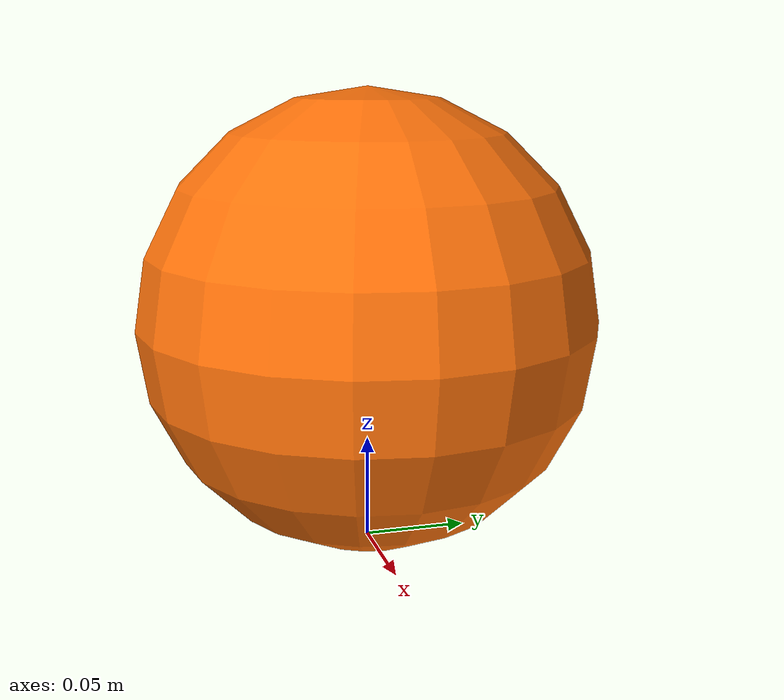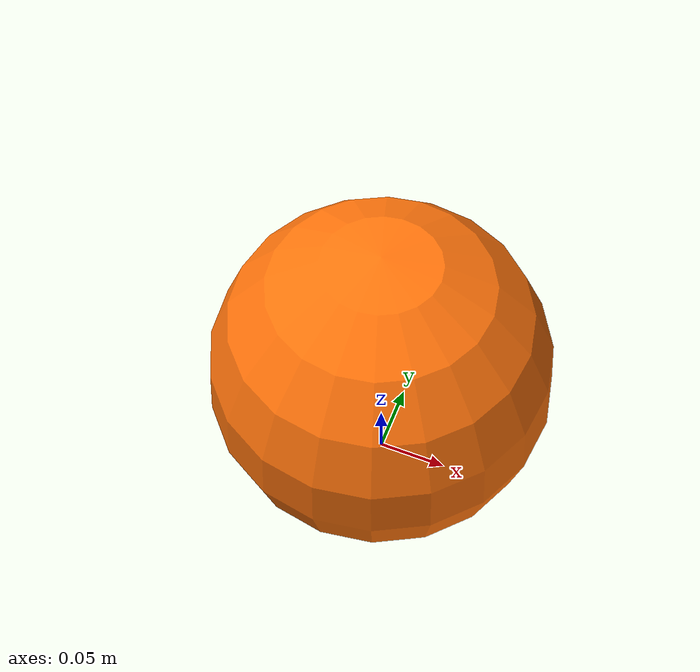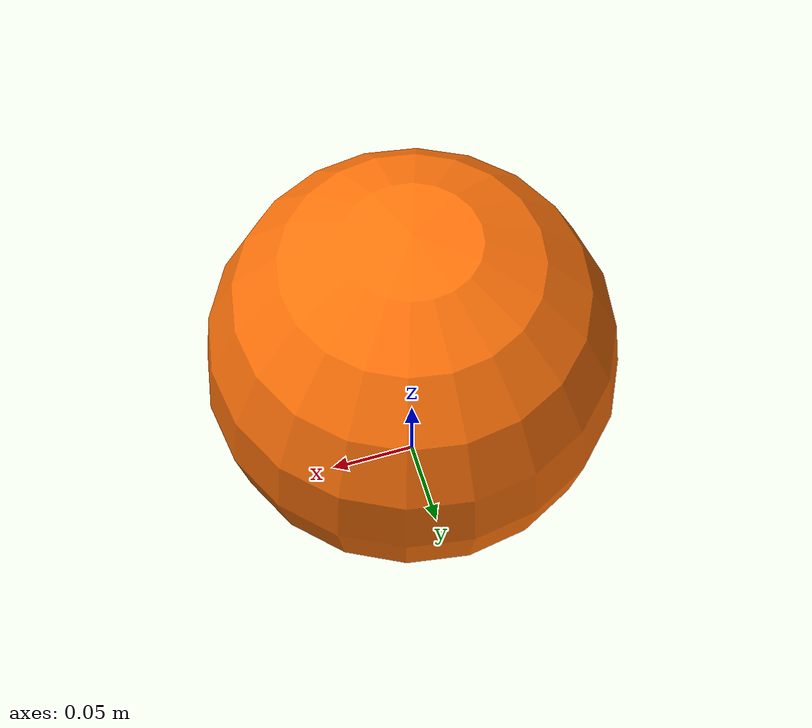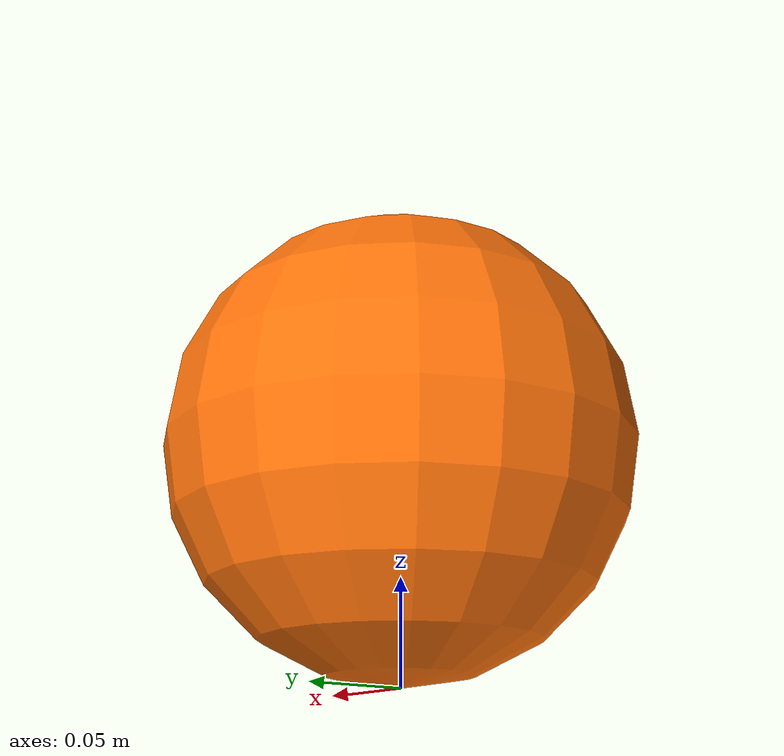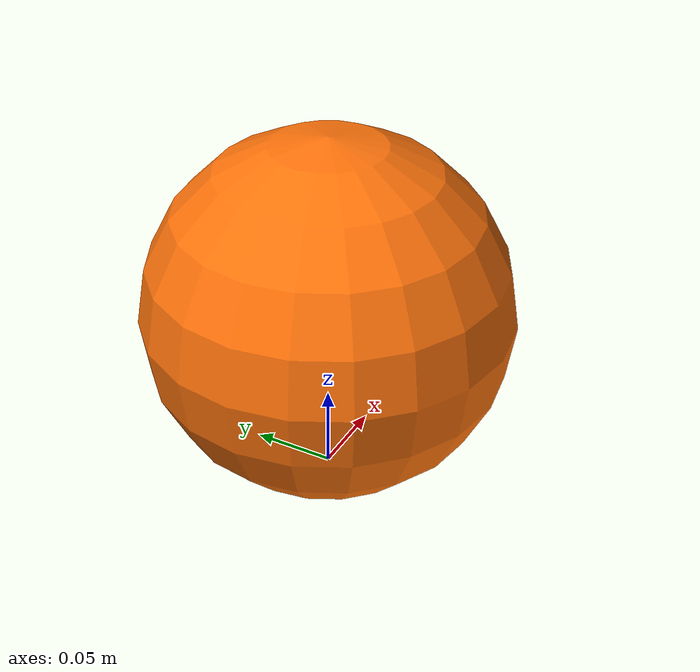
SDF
<?xml version="1.0"?>
<sdf version="1.7">
  <model name="target_ball">
    <static>true</static>
    <link name="link">

      <visual name="visual">
        <pose>0 0 0.11 0 0 0</pose>
        <geometry><sphere><radius>0.11</radius></sphere></geometry>
        <material>
          <ambient>0.90 0.40 0.03 1</ambient>
          <diffuse>1.00 0.45 0.04 1</diffuse>
          <specular>0.20 0.20 0.20 1</specular>
        </material>
      </visual>
      <collision name="collision">
        <pose>0 0 0.11 0 0 0</pose>
        <geometry><sphere><radius>0.11</radius></sphere></geometry>
      </collision>

    </link>
  </model>
</sdf>
